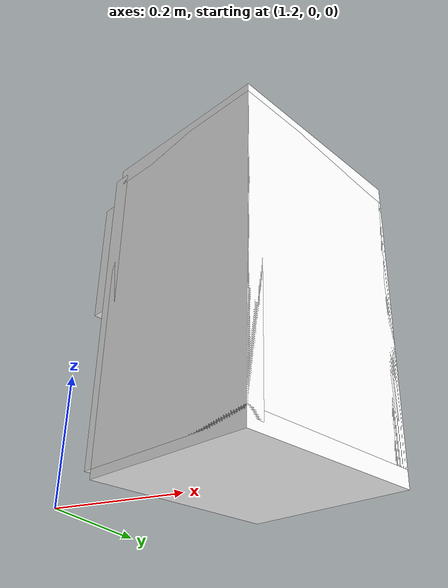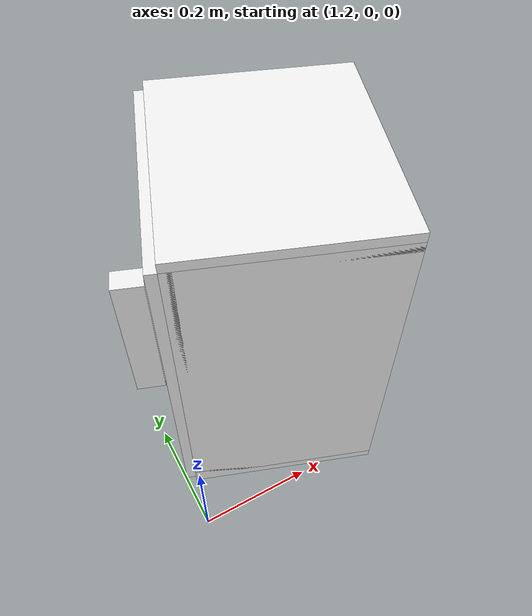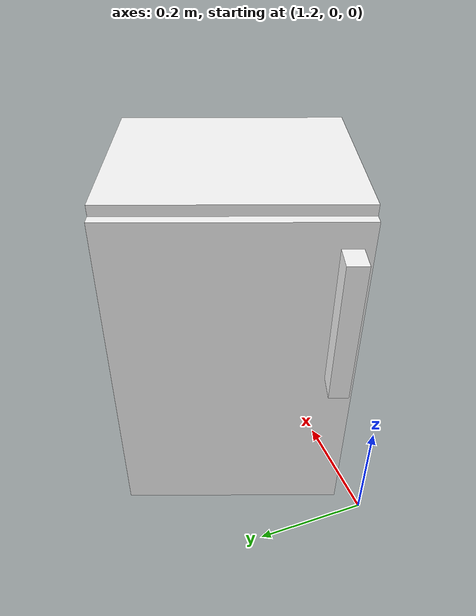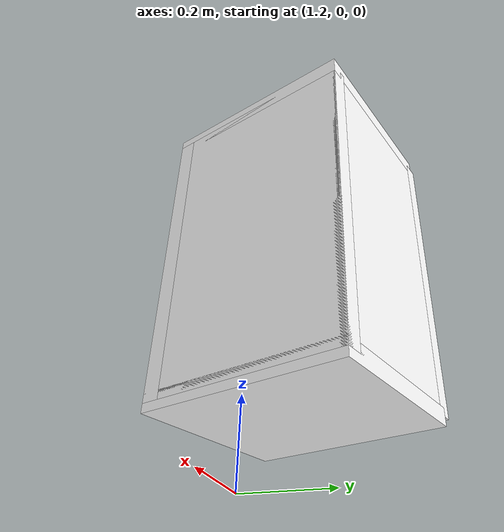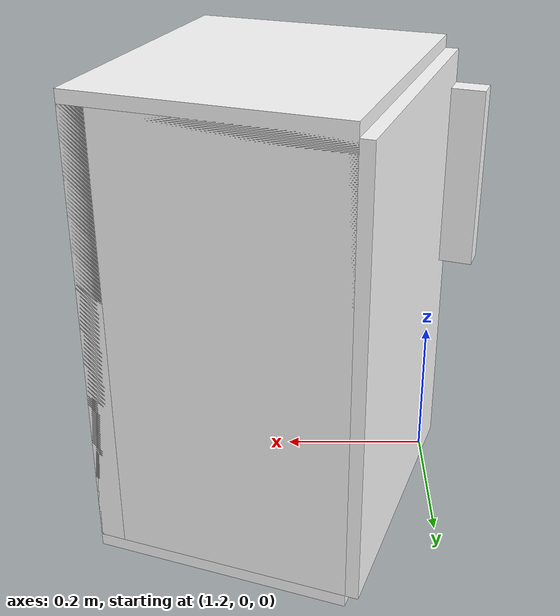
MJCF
<mujoco model="cabinet">
    <compiler angle="radian" eulerseq='zxy' />
    <option gravity = "0 0 0" />
    <option>
        <flag contact = "disable"/>
    </option>
    <statistic	extent="1.0" center="0.0 0.0 0.0"/>
    <visual>
        <map fogstart="3" fogend="5" force="0.1" znear=" 0.100000 " zfar=" 12.000000 "/>
    </visual>
    <size njmax="500" nconmax="100" />
    <actuator>
        <velocity joint="bottom_left_hinge" name="viva_revolution" kv='10'></velocity>
    </actuator>
    <asset>
        <texture builtin="flat" name="tabletex" height="32" width="32" rgb1="1 1 1" type="cube"></texture>
        <texture builtin="flat" name="objtex" height="32" width="32" rgb1="1 1 1" type="cube"></texture>
        <texture builtin="flat" name="handletex" height="32" width="32" rgb1="1 1 1" type="cube"></texture>
        <texture builtin="flat" name="wallpaper" height="32" width="32" rgb1="1 1 1" type="cube"></texture>
        <material name="geomTable" shininess="0.03" specular="0.75" texture="tabletex"></material>
        <material name="geomObj" shininess="0.03" specular="0.75" texture="objtex"></material>
        <material name="geomHandle" shininess="0.03" specular="0.75" texture="handletex"></material>
        <material name="bg" shininess="0.03" specular="0.75" texture="wallpaper"></material>
    </asset>
    <worldbody>
            <body name="cabinet_bottom" pos= " 1.421116 0.178165 0.071663 "  quat= " 0.170005 0.000000 0.000000 0.985443" >
                <inertial pos="0 0 0" mass="1" diaginertia="1 1 1" />
                <geom size= " 0.159656 0.183812 0.016009 "  type="box" material="geomObj" name="b"/>
                <body name="cabinet_left" pos= " 0.000000 -0.167803 0.276831 " >
                    <inertial pos="0 0 0" mass="1" diaginertia="1 1 1" />
                    <geom size= " 0.159656 0.016009 0.276831 "  type="box" material="geomObj" name="c" />
                </body>
                <body name="cabinet_right" pos= " 0.000000 0.167803 0.276831 " >
                    <inertial pos="0 0 0" mass="1" diaginertia="1 1 1" />
                    <geom size= " 0.159656 0.016009 0.276831 "  type="box" material="geomObj" name="d" />
                </body>
                <body name="cabinet_top" pos= " 0.000000 0.000000 0.553663 " >
                    <inertial pos="0 0 0" mass="1" diaginertia="1 1 1" />
                    <geom size= " 0.159656 0.183812 0.016009 "  type="box" material="geomObj" name="e"/>
                </body>
                <body name="cabinet_back" pos= " -0.143647 0.000000 0.276831 "  >
                    <inertial pos="0 0 0" mass="1" diaginertia="1 1 1" />
                    <geom size= " 0.016009 0.183812 0.276831 "  type="box" material="geomObj" name="f" />
                </body>
                <body name="cabinet_left_hinge" pos= " 0.159656 -0.183812 0.276831 " >
                    <inertial pos= " 0.000000 0.183812 0.000000 "  mass="1" diaginertia="1 1 1" />
                    <joint name="bottom_left_hinge" type="hinge" pos="0 0 0" axis="0 0 1" limited="true" range= "-2.3 0"  />
                    <geom size= " 0.016009 0.183812 0.276831 "  pos= " 0.000000 0.183812 0.000000 "  type="box" material="geomObj" name="g"/>
                    <body name="handle_link" pos= " 0.039914 0.337255 0.127445 " >
                        <inertial pos="0 0 0" mass="1" diaginertia="1 1 1" />
                        <geom size= " 0.020776 0.015003 0.112693 "  type="box" material="geomHandle" name="h"/>
                    </body>
                </body>
            </body>
        <body name="external_camera_body_0" pos="0.0 0 0.00">
            <camera euler="-1.57 1.57 0.0" fovy=" 54.280851 " name="external_camera_0" pos="0.0 0 0"></camera>
            <inertial pos= " 0.00 0.0 0.000000 " mass="1" diaginertia="1 1 1" />
            <joint name="cam_j" pos="0.0 0 0" axis = "1 0 0" type="free" />
        </body>
    </worldbody>
</mujoco>
